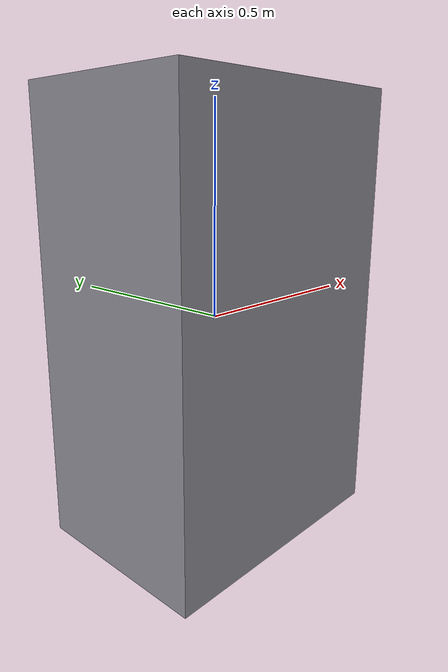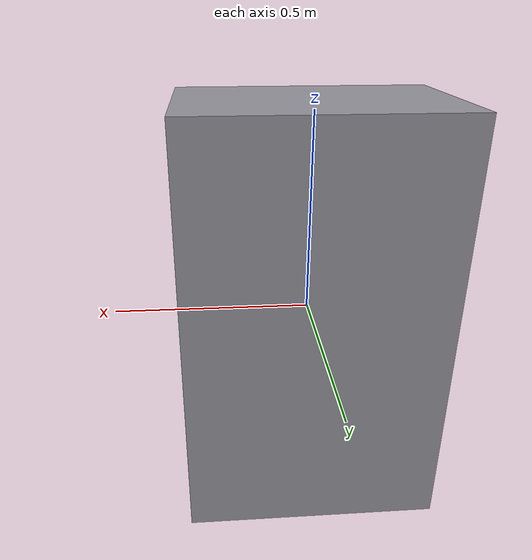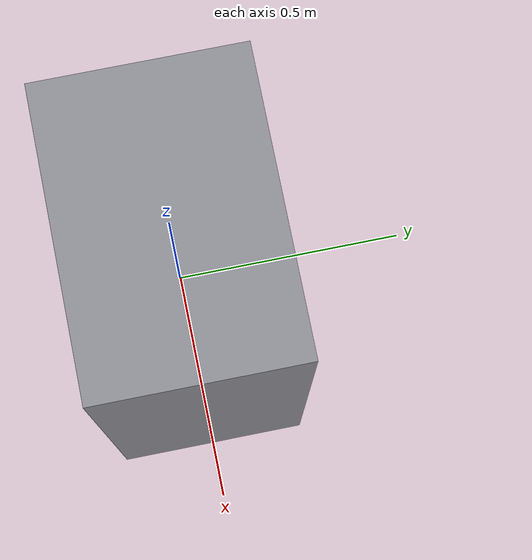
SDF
<?xml version="1.0"?>
<sdf version="1.6">
  <model name="InstrumentCart1">
    <static>true</static>
    <link name="link">
      <collision name="col">
        <geometry>
          <box>
            <size>0.65 0.45 1.05</size>
          </box>
        </geometry>
      </collision>
      <visual name="vis">
        <geometry>
          <box>
            <size>0.65 0.45 1.05</size>
          </box>
        </geometry>
        <material>
          <ambient>0.55 0.55 0.58 1</ambient>
          <diffuse>0.55 0.55 0.58 1</diffuse>
        </material>
      </visual>
    </link>
  </model>
</sdf>
